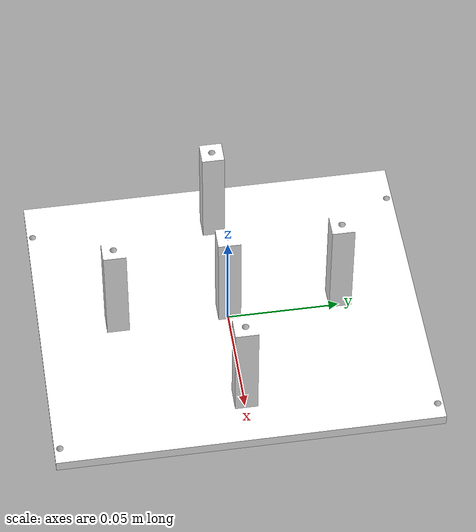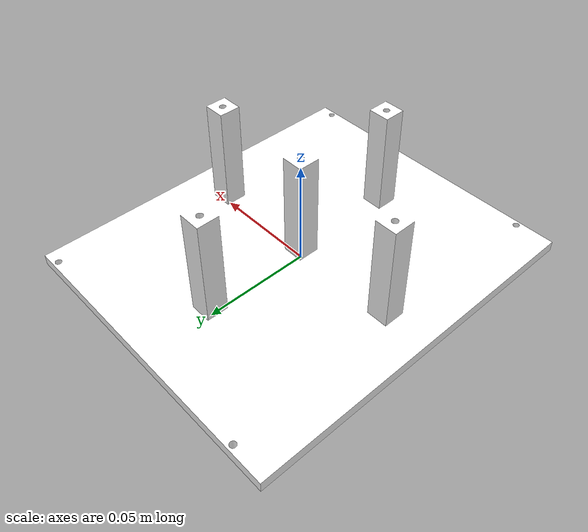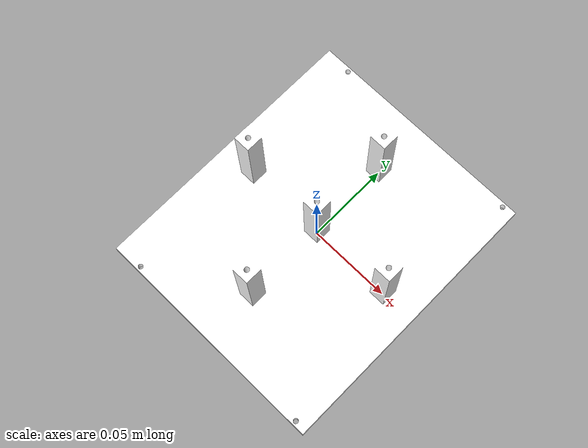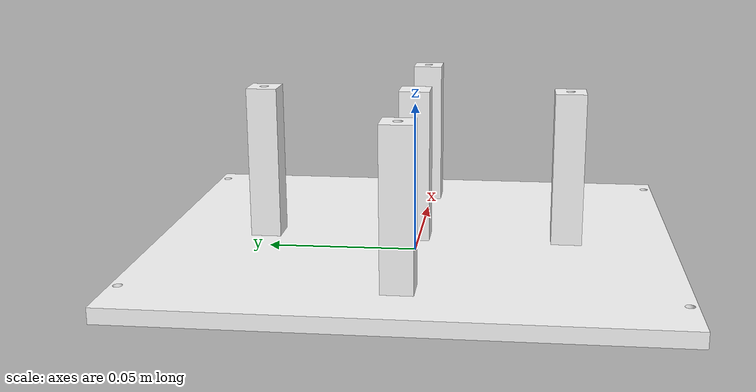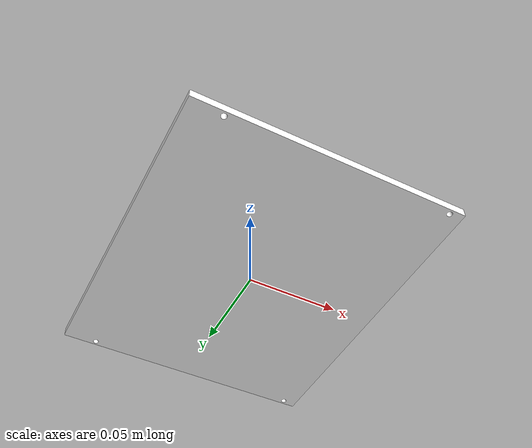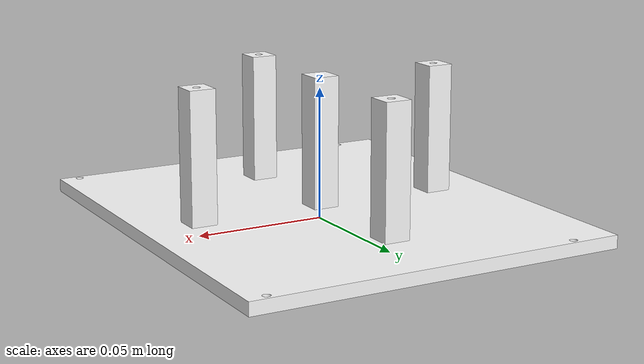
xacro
<?xml version="1.0"?>
<robot xmlns:xacro="http://www.ros.org/wiki/xacro" >

    <xacro:include filename="inertial_macros.xacro"/>

    <material name="white">
        <color rgba="1.0 1.0 1.0 1.0"/>
    </material>

    <!-- BASE LINK-->
    <link name="base_link"></link>

    <!-- BASE_FOOTPRINT LINK necessary for slam_toolbox-->

    <joint name="base_footprint_joint" type="fixed">
        <origin xyz="0.0 0.0 0.0" rpy="0.0 0.0 0.0"/>
        <parent link="base_link"/>
        <child link="base_footprint"/>
    </joint>

    <link name="base_footprint"></link>

    <joint name="base_chassis_joint" type="fixed">
        <origin xyz="0.0 0.0 0.0" rpy="0.0 0.0 0.0"/>
        <parent link="base_footprint"/>
        <child link="base_chassis"/>
    </joint>

    <link name="base_chassis">
        <visual name="">
            <origin xyz="0.0 0.0 0.0" rpy="0.0 0.0 0.0"/>
            <geometry>
                <mesh filename="package://perception_system_v2/meshes/base.dae"/>
            </geometry>
            <material name="white"/>
        </visual>
        <collision>
            <origin xyz="0 0.0 0.0" rpy="0.0 0.0 0.0"/>
            <geometry>
                <mesh filename="package://perception_system_v2/meshes/base.dae"/>
            </geometry>
        </collision>
        <!-- Todo -->
        <xacro:inertial_box mass="0.5" x="0.01" y="0.01" z="0.01">
            <origin xyz="0.0 0.0 0.0" rpy="0.0 0.0 0.0"/>
        </xacro:inertial_box>
    </link>

</robot>
